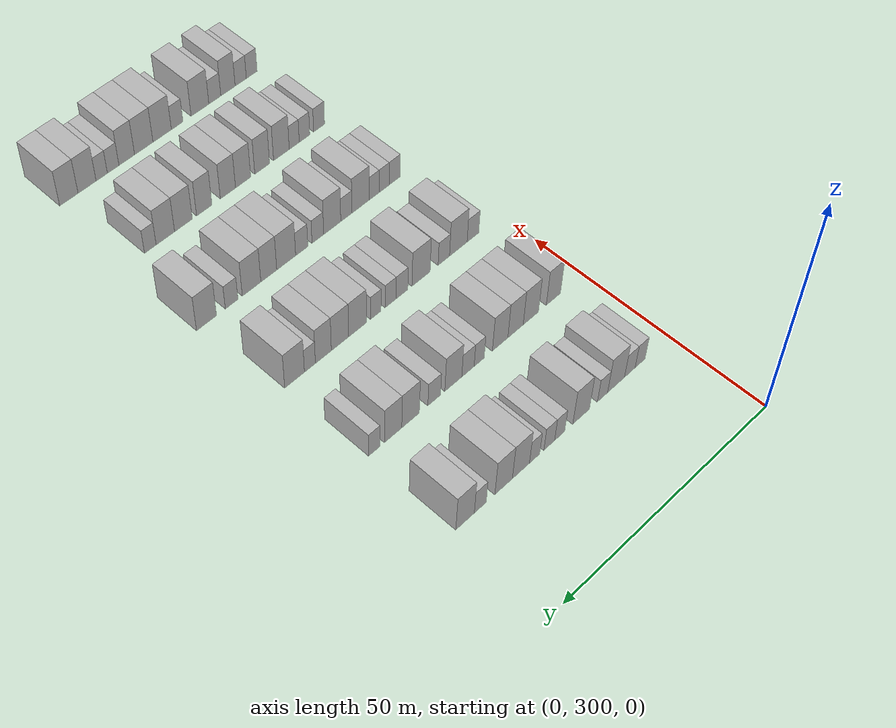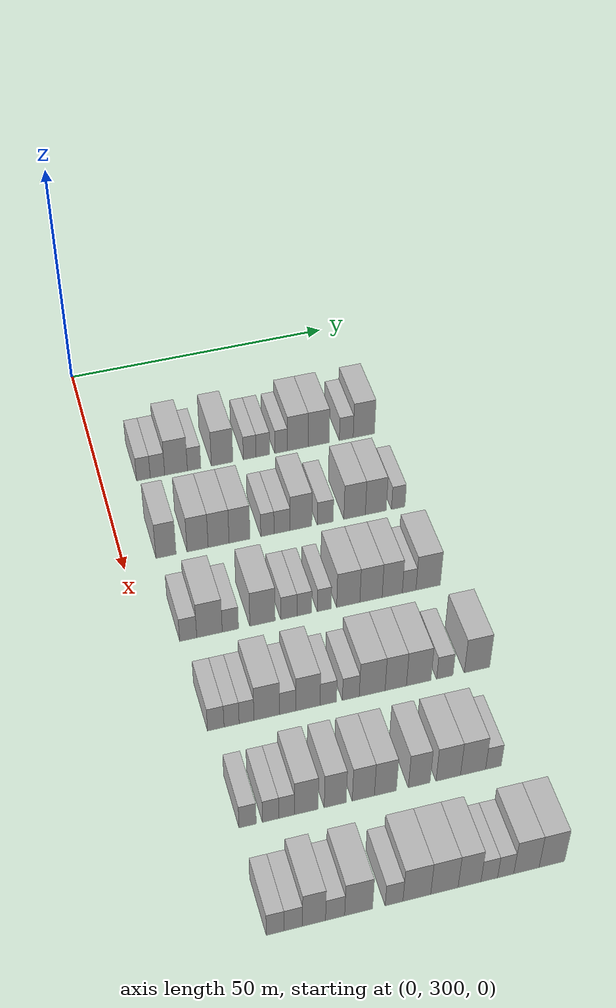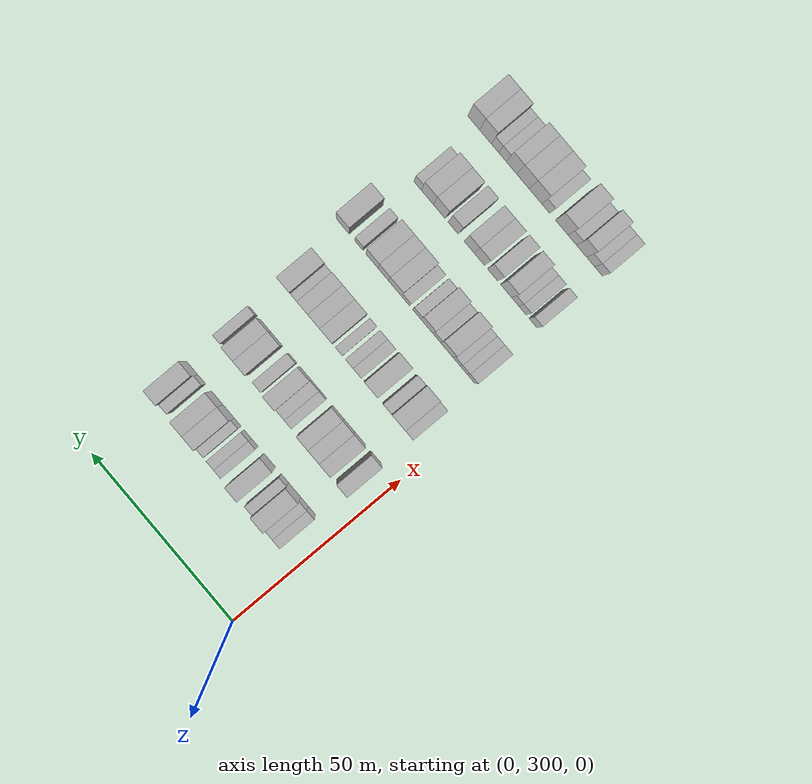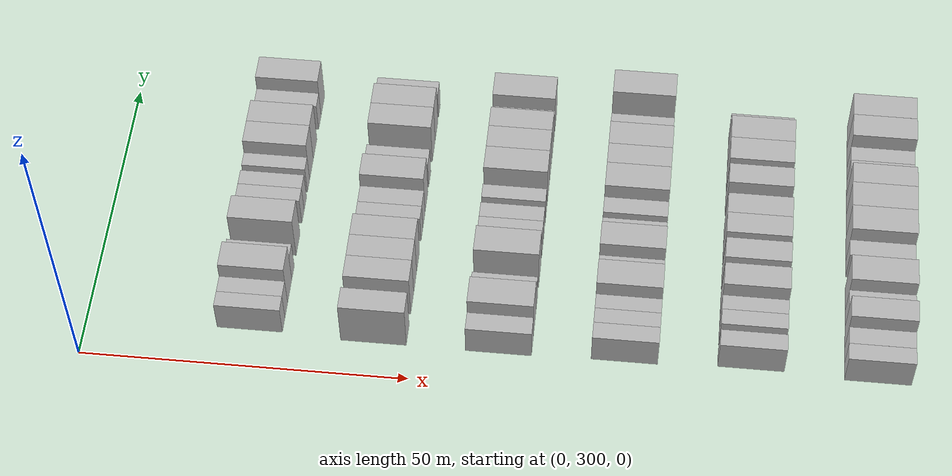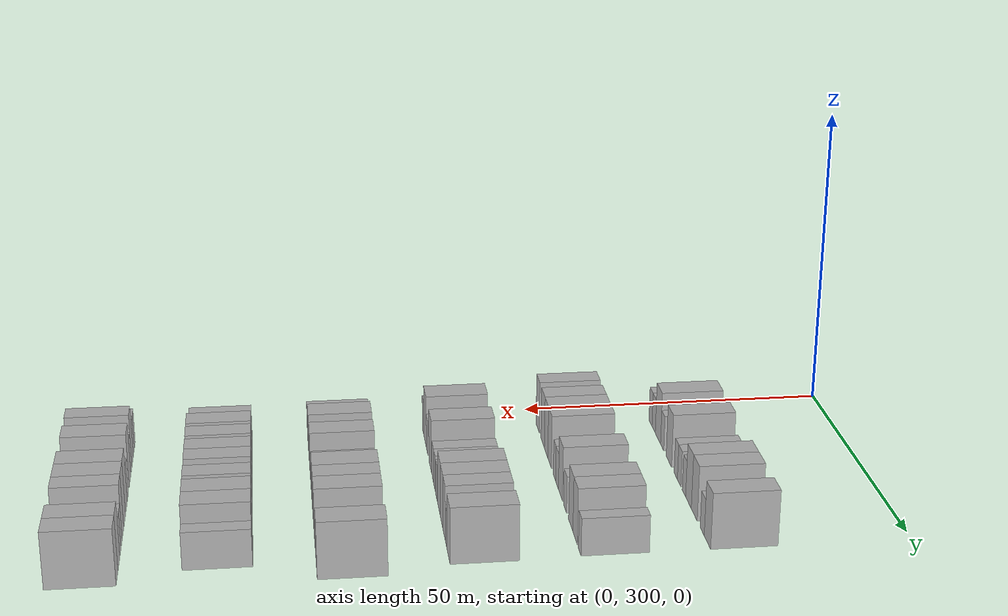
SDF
<sdf version="1.6">
 <world name="default">
  <model name="building_157">
   <static>1</static>
   <pose>25.0000 307.7152 0 0.000000 0.000000 0.000000</pose>
   <link name="link">
    <pose>0 0 3.00 0 0 0</pose>
    <collision name="collision"><geometry><box><size>10.0000 2.5644 6.0000</size></box></geometry></collision>
    <visual name="visual">
     <cast_shadows>0</cast_shadows>
     <geometry><box><size>10.0000 2.5644 6.0000</size></box></geometry>
     <material>
      <script>
       <uri>model://HANNAS_wall/materials/scripts</uri>
       <uri>model://HANNAS_wall/materials/textures</uri>
       <name>vrc/HANNAS_wall</name>
      </script>
     </material>
    </visual>
   </link>
  </model>
  <model name="building_158">
   <static>1</static>
   <pose>25.0000 310.3605 0 0.000000 0.000000 0.000000</pose>
   <link name="link">
    <pose>0 0 3.00 0 0 0</pose>
    <collision name="collision"><geometry><box><size>10.0000 2.7262 6.0000</size></box></geometry></collision>
    <visual name="visual">
     <cast_shadows>0</cast_shadows>
     <geometry><box><size>10.0000 2.7262 6.0000</size></box></geometry>
     <material>
      <script>
       <uri>model://HANNAS_wall/materials/scripts</uri>
       <uri>model://HANNAS_wall/materials/textures</uri>
       <name>vrc/HANNAS_wall</name>
      </script>
     </material>
    </visual>
   </link>
  </model>
  <model name="building_159">
   <static>1</static>
   <pose>25.0000 313.8693 0 0.000000 0.000000 0.000000</pose>
   <link name="link">
    <pose>0 0 4.50 0 0 0</pose>
    <collision name="collision"><geometry><box><size>10.0000 4.2914 9.0000</size></box></geometry></collision>
    <visual name="visual">
     <cast_shadows>0</cast_shadows>
     <geometry><box><size>10.0000 4.2914 9.0000</size></box></geometry>
     <material>
      <script>
       <uri>model://HANNAS_wall/materials/scripts</uri>
       <uri>model://HANNAS_wall/materials/textures</uri>
       <name>vrc/HANNAS_wall</name>
      </script>
     </material>
    </visual>
   </link>
  </model>
  <model name="building_160">
   <static>1</static>
   <pose>25.0000 317.2918 0 0.000000 0.000000 0.000000</pose>
   <link name="link">
    <pose>0 0 3.00 0 0 0</pose>
    <collision name="collision"><geometry><box><size>10.0000 2.5536 6.0000</size></box></geometry></collision>
    <visual name="visual">
     <cast_shadows>0</cast_shadows>
     <geometry><box><size>10.0000 2.5536 6.0000</size></box></geometry>
     <material>
      <script>
       <uri>model://HANNAS_wall/materials/scripts</uri>
       <uri>model://HANNAS_wall/materials/textures</uri>
       <name>vrc/HANNAS_wall</name>
      </script>
     </material>
    </visual>
   </link>
  </model>
  <model name="building_161">
   <static>1</static>
   <pose>25.0000 322.6213 0 0.000000 0.000000 0.000000</pose>
   <link name="link">
    <pose>0 0 4.50 0 0 0</pose>
    <collision name="collision"><geometry><box><size>10.0000 4.1053 9.0000</size></box></geometry></collision>
    <visual name="visual">
     <cast_shadows>0</cast_shadows>
     <geometry><box><size>10.0000 4.1053 9.0000</size></box></geometry>
     <material>
      <script>
       <uri>model://HANNAS_wall/materials/scripts</uri>
       <uri>model://HANNAS_wall/materials/textures</uri>
       <name>vrc/HANNAS_wall</name>
      </script>
     </material>
    </visual>
   </link>
  </model>
  <model name="building_162">
   <static>1</static>
   <pose>25.0000 327.8929 0 0.000000 0.000000 0.000000</pose>
   <link name="link">
    <pose>0 0 3.00 0 0 0</pose>
    <collision name="collision"><geometry><box><size>10.0000 2.4380 6.0000</size></box></geometry></collision>
    <visual name="visual">
     <cast_shadows>0</cast_shadows>
     <geometry><box><size>10.0000 2.4380 6.0000</size></box></geometry>
     <material>
      <script>
       <uri>model://HANNAS_wall/materials/scripts</uri>
       <uri>model://HANNAS_wall/materials/textures</uri>
       <name>vrc/HANNAS_wall</name>
      </script>
     </material>
    </visual>
   </link>
  </model>
  <model name="building_163">
   <static>1</static>
   <pose>25.0000 330.4082 0 0.000000 0.000000 0.000000</pose>
   <link name="link">
    <pose>0 0 3.00 0 0 0</pose>
    <collision name="collision"><geometry><box><size>10.0000 2.5927 6.0000</size></box></geometry></collision>
    <visual name="visual">
     <cast_shadows>0</cast_shadows>
     <geometry><box><size>10.0000 2.5927 6.0000</size></box></geometry>
     <material>
      <script>
       <uri>model://HANNAS_wall/materials/scripts</uri>
       <uri>model://HANNAS_wall/materials/textures</uri>
       <name>vrc/HANNAS_wall</name>
      </script>
     </material>
    </visual>
   </link>
  </model>
  <model name="building_164">
   <static>1</static>
   <pose>25.0000 333.9243 0 0.000000 0.000000 0.000000</pose>
   <link name="link">
    <pose>0 0 3.00 0 0 0</pose>
    <collision name="collision"><geometry><box><size>10.0000 2.4395 6.0000</size></box></geometry></collision>
    <visual name="visual">
     <cast_shadows>0</cast_shadows>
     <geometry><box><size>10.0000 2.4395 6.0000</size></box></geometry>
     <material>
      <script>
       <uri>model://HANNAS_wall/materials/scripts</uri>
       <uri>model://HANNAS_wall/materials/textures</uri>
       <name>vrc/HANNAS_wall</name>
      </script>
     </material>
    </visual>
   </link>
  </model>
  <model name="building_165">
   <static>1</static>
   <pose>25.0000 337.1526 0 0.000000 0.000000 0.000000</pose>
   <link name="link">
    <pose>0 0 4.50 0 0 0</pose>
    <collision name="collision"><geometry><box><size>10.0000 4.0172 9.0000</size></box></geometry></collision>
    <visual name="visual">
     <cast_shadows>0</cast_shadows>
     <geometry><box><size>10.0000 4.0172 9.0000</size></box></geometry>
     <material>
      <script>
       <uri>model://HANNAS_wall/materials/scripts</uri>
       <uri>model://HANNAS_wall/materials/textures</uri>
       <name>vrc/HANNAS_wall</name>
      </script>
     </material>
    </visual>
   </link>
  </model>
  <model name="building_166">
   <static>1</static>
   <pose>25.0000 341.2038 0 0.000000 0.000000 0.000000</pose>
   <link name="link">
    <pose>0 0 4.50 0 0 0</pose>
    <collision name="collision"><geometry><box><size>10.0000 4.0850 9.0000</size></box></geometry></collision>
    <visual name="visual">
     <cast_shadows>0</cast_shadows>
     <geometry><box><size>10.0000 4.0850 9.0000</size></box></geometry>
     <material>
      <script>
       <uri>model://HANNAS_wall/materials/scripts</uri>
       <uri>model://HANNAS_wall/materials/textures</uri>
       <name>vrc/HANNAS_wall</name>
      </script>
     </material>
    </visual>
   </link>
  </model>
  <model name="building_167">
   <static>1</static>
   <pose>25.0000 346.6024 0 0.000000 0.000000 0.000000</pose>
   <link name="link">
    <pose>0 0 3.00 0 0 0</pose>
    <collision name="collision"><geometry><box><size>10.0000 2.7123 6.0000</size></box></geometry></collision>
    <visual name="visual">
     <cast_shadows>0</cast_shadows>
     <geometry><box><size>10.0000 2.7123 6.0000</size></box></geometry>
     <material>
      <script>
       <uri>model://HANNAS_wall/materials/scripts</uri>
       <uri>model://HANNAS_wall/materials/textures</uri>
       <name>vrc/HANNAS_wall</name>
      </script>
     </material>
    </visual>
   </link>
  </model>
  <model name="building_168">
   <static>1</static>
   <pose>25.0000 350.0509 0 0.000000 0.000000 0.000000</pose>
   <link name="link">
    <pose>0 0 4.50 0 0 0</pose>
    <collision name="collision"><geometry><box><size>10.0000 4.1846 9.0000</size></box></geometry></collision>
    <visual name="visual">
     <cast_shadows>0</cast_shadows>
     <geometry><box><size>10.0000 4.1846 9.0000</size></box></geometry>
     <material>
      <script>
       <uri>model://HANNAS_wall/materials/scripts</uri>
       <uri>model://HANNAS_wall/materials/textures</uri>
       <name>vrc/HANNAS_wall</name>
      </script>
     </material>
    </visual>
   </link>
  </model>
  <model name="building_320">
   <static>1</static>
   <pose>44.0000 307.7018 0 0.000000 0.000000 0.000000</pose>
   <link name="link">
    <pose>0 0 4.50 0 0 0</pose>
    <collision name="collision"><geometry><box><size>10.0000 3.6535 9.0000</size></box></geometry></collision>
    <visual name="visual">
     <cast_shadows>0</cast_shadows>
     <geometry><box><size>10.0000 3.6535 9.0000</size></box></geometry>
     <material>
      <script>
       <uri>model://HANNAS_wall/materials/scripts</uri>
       <uri>model://HANNAS_wall/materials/textures</uri>
       <name>vrc/HANNAS_wall</name>
      </script>
     </material>
    </visual>
   </link>
  </model>
  <model name="building_321">
   <static>1</static>
   <pose>44.0000 313.4511 0 0.000000 0.000000 0.000000</pose>
   <link name="link">
    <pose>0 0 4.50 0 0 0</pose>
    <collision name="collision"><geometry><box><size>10.0000 3.8453 9.0000</size></box></geometry></collision>
    <visual name="visual">
     <cast_shadows>0</cast_shadows>
     <geometry><box><size>10.0000 3.8453 9.0000</size></box></geometry>
     <material>
      <script>
       <uri>model://HANNAS_wall/materials/scripts</uri>
       <uri>model://HANNAS_wall/materials/textures</uri>
       <name>vrc/HANNAS_wall</name>
      </script>
     </material>
    </visual>
   </link>
  </model>
  <model name="building_322">
   <static>1</static>
   <pose>44.0000 317.2919 0 0.000000 0.000000 0.000000</pose>
   <link name="link">
    <pose>0 0 4.50 0 0 0</pose>
    <collision name="collision"><geometry><box><size>10.0000 3.8361 9.0000</size></box></geometry></collision>
    <visual name="visual">
     <cast_shadows>0</cast_shadows>
     <geometry><box><size>10.0000 3.8361 9.0000</size></box></geometry>
     <material>
      <script>
       <uri>model://HANNAS_wall/materials/scripts</uri>
       <uri>model://HANNAS_wall/materials/textures</uri>
       <name>vrc/HANNAS_wall</name>
      </script>
     </material>
    </visual>
   </link>
  </model>
  <model name="building_323">
   <static>1</static>
   <pose>44.0000 321.1308 0 0.000000 0.000000 0.000000</pose>
   <link name="link">
    <pose>0 0 4.50 0 0 0</pose>
    <collision name="collision"><geometry><box><size>10.0000 3.8418 9.0000</size></box></geometry></collision>
    <visual name="visual">
     <cast_shadows>0</cast_shadows>
     <geometry><box><size>10.0000 3.8418 9.0000</size></box></geometry>
     <material>
      <script>
       <uri>model://HANNAS_wall/materials/scripts</uri>
       <uri>model://HANNAS_wall/materials/textures</uri>
       <name>vrc/HANNAS_wall</name>
      </script>
     </material>
    </visual>
   </link>
  </model>
  <model name="building_324">
   <static>1</static>
   <pose>44.0000 326.2718 0 0.000000 0.000000 0.000000</pose>
   <link name="link">
    <pose>0 0 3.00 0 0 0</pose>
    <collision name="collision"><geometry><box><size>10.0000 2.4402 6.0000</size></box></geometry></collision>
    <visual name="visual">
     <cast_shadows>0</cast_shadows>
     <geometry><box><size>10.0000 2.4402 6.0000</size></box></geometry>
     <material>
      <script>
       <uri>model://HANNAS_wall/materials/scripts</uri>
       <uri>model://HANNAS_wall/materials/textures</uri>
       <name>vrc/HANNAS_wall</name>
      </script>
     </material>
    </visual>
   </link>
  </model>
  <model name="building_325">
   <static>1</static>
   <pose>44.0000 328.9857 0 0.000000 0.000000 0.000000</pose>
   <link name="link">
    <pose>0 0 3.00 0 0 0</pose>
    <collision name="collision"><geometry><box><size>10.0000 2.9875 6.0000</size></box></geometry></collision>
    <visual name="visual">
     <cast_shadows>0</cast_shadows>
     <geometry><box><size>10.0000 2.9875 6.0000</size></box></geometry>
     <material>
      <script>
       <uri>model://HANNAS_wall/materials/scripts</uri>
       <uri>model://HANNAS_wall/materials/textures</uri>
       <name>vrc/HANNAS_wall</name>
      </script>
     </material>
    </visual>
   </link>
  </model>
  <model name="building_326">
   <static>1</static>
   <pose>44.0000 332.5061 0 0.000000 0.000000 0.000000</pose>
   <link name="link">
    <pose>0 0 4.50 0 0 0</pose>
    <collision name="collision"><geometry><box><size>10.0000 4.0532 9.0000</size></box></geometry></collision>
    <visual name="visual">
     <cast_shadows>0</cast_shadows>
     <geometry><box><size>10.0000 4.0532 9.0000</size></box></geometry>
     <material>
      <script>
       <uri>model://HANNAS_wall/materials/scripts</uri>
       <uri>model://HANNAS_wall/materials/textures</uri>
       <name>vrc/HANNAS_wall</name>
      </script>
     </material>
    </visual>
   </link>
  </model>
  <model name="building_327">
   <static>1</static>
   <pose>44.0000 337.0274 0 0.000000 0.000000 0.000000</pose>
   <link name="link">
    <pose>0 0 3.00 0 0 0</pose>
    <collision name="collision"><geometry><box><size>10.0000 2.9894 6.0000</size></box></geometry></collision>
    <visual name="visual">
     <cast_shadows>0</cast_shadows>
     <geometry><box><size>10.0000 2.9894 6.0000</size></box></geometry>
     <material>
      <script>
       <uri>model://HANNAS_wall/materials/scripts</uri>
       <uri>model://HANNAS_wall/materials/textures</uri>
       <name>vrc/HANNAS_wall</name>
      </script>
     </material>
    </visual>
   </link>
  </model>
  <model name="building_328">
   <static>1</static>
   <pose>44.0000 342.5498 0 0.000000 0.000000 0.000000</pose>
   <link name="link">
    <pose>0 0 4.50 0 0 0</pose>
    <collision name="collision"><geometry><box><size>10.0000 4.0553 9.0000</size></box></geometry></collision>
    <visual name="visual">
     <cast_shadows>0</cast_shadows>
     <geometry><box><size>10.0000 4.0553 9.0000</size></box></geometry>
     <material>
      <script>
       <uri>model://HANNAS_wall/materials/scripts</uri>
       <uri>model://HANNAS_wall/materials/textures</uri>
       <name>vrc/HANNAS_wall</name>
      </script>
     </material>
    </visual>
   </link>
  </model>
  <model name="building_329">
   <static>1</static>
   <pose>44.0000 346.5555 0 0.000000 0.000000 0.000000</pose>
   <link name="link">
    <pose>0 0 4.50 0 0 0</pose>
    <collision name="collision"><geometry><box><size>10.0000 3.9561 9.0000</size></box></geometry></collision>
    <visual name="visual">
     <cast_shadows>0</cast_shadows>
     <geometry><box><size>10.0000 3.9561 9.0000</size></box></geometry>
     <material>
      <script>
       <uri>model://HANNAS_wall/materials/scripts</uri>
       <uri>model://HANNAS_wall/materials/textures</uri>
       <name>vrc/HANNAS_wall</name>
      </script>
     </material>
    </visual>
   </link>
  </model>
  <model name="building_330">
   <static>1</static>
   <pose>44.0000 350.8119 0 0.000000 0.000000 0.000000</pose>
   <link name="link">
    <pose>0 0 3.00 0 0 0</pose>
    <collision name="collision"><geometry><box><size>10.0000 2.5568 6.0000</size></box></geometry></collision>
    <visual name="visual">
     <cast_shadows>0</cast_shadows>
     <geometry><box><size>10.0000 2.5568 6.0000</size></box></geometry>
     <material>
      <script>
       <uri>model://HANNAS_wall/materials/scripts</uri>
       <uri>model://HANNAS_wall/materials/textures</uri>
       <name>vrc/HANNAS_wall</name>
      </script>
     </material>
    </visual>
   </link>
  </model>
  <model name="building_492">
   <static>1</static>
   <pose>63.0000 307.3022 0 0.000000 0.000000 0.000000</pose>
   <link name="link">
    <pose>0 0 3.00 0 0 0</pose>
    <collision name="collision"><geometry><box><size>10.0000 2.9819 6.0000</size></box></geometry></collision>
    <visual name="visual">
     <cast_shadows>0</cast_shadows>
     <geometry><box><size>10.0000 2.9819 6.0000</size></box></geometry>
     <material>
      <script>
       <uri>model://HANNAS_wall/materials/scripts</uri>
       <uri>model://HANNAS_wall/materials/textures</uri>
       <name>vrc/HANNAS_wall</name>
      </script>
     </material>
    </visual>
   </link>
  </model>
  <model name="building_493">
   <static>1</static>
   <pose>63.0000 311.0277 0 0.000000 0.000000 0.000000</pose>
   <link name="link">
    <pose>0 0 4.50 0 0 0</pose>
    <collision name="collision"><geometry><box><size>10.0000 4.4692 9.0000</size></box></geometry></collision>
    <visual name="visual">
     <cast_shadows>0</cast_shadows>
     <geometry><box><size>10.0000 4.4692 9.0000</size></box></geometry>
     <material>
      <script>
       <uri>model://HANNAS_wall/materials/scripts</uri>
       <uri>model://HANNAS_wall/materials/textures</uri>
       <name>vrc/HANNAS_wall</name>
      </script>
     </material>
    </visual>
   </link>
  </model>
  <model name="building_494">
   <static>1</static>
   <pose>63.0000 314.6986 0 0.000000 0.000000 0.000000</pose>
   <link name="link">
    <pose>0 0 3.00 0 0 0</pose>
    <collision name="collision"><geometry><box><size>10.0000 2.8726 6.0000</size></box></geometry></collision>
    <visual name="visual">
     <cast_shadows>0</cast_shadows>
     <geometry><box><size>10.0000 2.8726 6.0000</size></box></geometry>
     <material>
      <script>
       <uri>model://HANNAS_wall/materials/scripts</uri>
       <uri>model://HANNAS_wall/materials/textures</uri>
       <name>vrc/HANNAS_wall</name>
      </script>
     </material>
    </visual>
   </link>
  </model>
  <model name="building_495">
   <static>1</static>
   <pose>63.0000 320.3788 0 0.000000 0.000000 0.000000</pose>
   <link name="link">
    <pose>0 0 4.50 0 0 0</pose>
    <collision name="collision"><geometry><box><size>10.0000 4.4878 9.0000</size></box></geometry></collision>
    <visual name="visual">
     <cast_shadows>0</cast_shadows>
     <geometry><box><size>10.0000 4.4878 9.0000</size></box></geometry>
     <material>
      <script>
       <uri>model://HANNAS_wall/materials/scripts</uri>
       <uri>model://HANNAS_wall/materials/textures</uri>
       <name>vrc/HANNAS_wall</name>
      </script>
     </material>
    </visual>
   </link>
  </model>
  <model name="building_496">
   <static>1</static>
   <pose>63.0000 325.0568 0 0.000000 0.000000 0.000000</pose>
   <link name="link">
    <pose>0 0 3.00 0 0 0</pose>
    <collision name="collision"><geometry><box><size>10.0000 2.8682 6.0000</size></box></geometry></collision>
    <visual name="visual">
     <cast_shadows>0</cast_shadows>
     <geometry><box><size>10.0000 2.8682 6.0000</size></box></geometry>
     <material>
      <script>
       <uri>model://HANNAS_wall/materials/scripts</uri>
       <uri>model://HANNAS_wall/materials/textures</uri>
       <name>vrc/HANNAS_wall</name>
      </script>
     </material>
    </visual>
   </link>
  </model>
  <model name="building_497">
   <static>1</static>
   <pose>63.0000 327.8164 0 0.000000 0.000000 0.000000</pose>
   <link name="link">
    <pose>0 0 3.00 0 0 0</pose>
    <collision name="collision"><geometry><box><size>10.0000 2.6510 6.0000</size></box></geometry></collision>
    <visual name="visual">
     <cast_shadows>0</cast_shadows>
     <geometry><box><size>10.0000 2.6510 6.0000</size></box></geometry>
     <material>
      <script>
       <uri>model://HANNAS_wall/materials/scripts</uri>
       <uri>model://HANNAS_wall/materials/textures</uri>
       <name>vrc/HANNAS_wall</name>
      </script>
     </material>
    </visual>
   </link>
  </model>
  <model name="building_498">
   <static>1</static>
   <pose>63.0000 331.3830 0 0.000000 0.000000 0.000000</pose>
   <link name="link">
    <pose>0 0 3.00 0 0 0</pose>
    <collision name="collision"><geometry><box><size>10.0000 2.4822 6.0000</size></box></geometry></collision>
    <visual name="visual">
     <cast_shadows>0</cast_shadows>
     <geometry><box><size>10.0000 2.4822 6.0000</size></box></geometry>
     <material>
      <script>
       <uri>model://HANNAS_wall/materials/scripts</uri>
       <uri>model://HANNAS_wall/materials/textures</uri>
       <name>vrc/HANNAS_wall</name>
      </script>
     </material>
    </visual>
   </link>
  </model>
  <model name="building_499">
   <static>1</static>
   <pose>63.0000 335.7173 0 0.000000 0.000000 0.000000</pose>
   <link name="link">
    <pose>0 0 4.50 0 0 0</pose>
    <collision name="collision"><geometry><box><size>10.0000 4.1864 9.0000</size></box></geometry></collision>
    <visual name="visual">
     <cast_shadows>0</cast_shadows>
     <geometry><box><size>10.0000 4.1864 9.0000</size></box></geometry>
     <material>
      <script>
       <uri>model://HANNAS_wall/materials/scripts</uri>
       <uri>model://HANNAS_wall/materials/textures</uri>
       <name>vrc/HANNAS_wall</name>
      </script>
     </material>
    </visual>
   </link>
  </model>
  <model name="building_500">
   <static>1</static>
   <pose>63.0000 339.8303 0 0.000000 0.000000 0.000000</pose>
   <link name="link">
    <pose>0 0 4.50 0 0 0</pose>
    <collision name="collision"><geometry><box><size>10.0000 4.0395 9.0000</size></box></geometry></collision>
    <visual name="visual">
     <cast_shadows>0</cast_shadows>
     <geometry><box><size>10.0000 4.0395 9.0000</size></box></geometry>
     <material>
      <script>
       <uri>model://HANNAS_wall/materials/scripts</uri>
       <uri>model://HANNAS_wall/materials/textures</uri>
       <name>vrc/HANNAS_wall</name>
      </script>
     </material>
    </visual>
   </link>
  </model>
  <model name="building_501">
   <static>1</static>
   <pose>63.0000 343.6864 0 0.000000 0.000000 0.000000</pose>
   <link name="link">
    <pose>0 0 4.50 0 0 0</pose>
    <collision name="collision"><geometry><box><size>10.0000 3.6728 9.0000</size></box></geometry></collision>
    <visual name="visual">
     <cast_shadows>0</cast_shadows>
     <geometry><box><size>10.0000 3.6728 9.0000</size></box></geometry>
     <material>
      <script>
       <uri>model://HANNAS_wall/materials/scripts</uri>
       <uri>model://HANNAS_wall/materials/textures</uri>
       <name>vrc/HANNAS_wall</name>
      </script>
     </material>
    </visual>
   </link>
  </model>
  <model name="building_502">
   <static>1</static>
   <pose>63.0000 346.7730 0 0.000000 0.000000 0.000000</pose>
   <link name="link">
    <pose>0 0 3.00 0 0 0</pose>
    <collision name="collision"><geometry><box><size>10.0000 2.5004 6.0000</size></box></geometry></collision>
    <visual name="visual">
     <cast_shadows>0</cast_shadows>
     <geometry><box><size>10.0000 2.5004 6.0000</size></box></geometry>
     <material>
      <script>
       <uri>model://HANNAS_wall/materials/scripts</uri>
       <uri>model://HANNAS_wall/materials/textures</uri>
       <name>vrc/HANNAS_wall</name>
      </script>
     </material>
    </visual>
   </link>
  </model>
  <model name="building_503">
   <static>1</static>
   <pose>63.0000 350.2565 0 0.000000 0.000000 0.000000</pose>
   <link name="link">
    <pose>0 0 4.50 0 0 0</pose>
    <collision name="collision"><geometry><box><size>10.0000 4.4666 9.0000</size></box></geometry></collision>
    <visual name="visual">
     <cast_shadows>0</cast_shadows>
     <geometry><box><size>10.0000 4.4666 9.0000</size></box></geometry>
     <material>
      <script>
       <uri>model://HANNAS_wall/materials/scripts</uri>
       <uri>model://HANNAS_wall/materials/textures</uri>
       <name>vrc/HANNAS_wall</name>
      </script>
     </material>
    </visual>
   </link>
  </model>
  <model name="building_664">
   <static>1</static>
   <pose>82.0000 307.4907 0 0.000000 0.000000 0.000000</pose>
   <link name="link">
    <pose>0 0 3.00 0 0 0</pose>
    <collision name="collision"><geometry><box><size>10.0000 2.7885 6.0000</size></box></geometry></collision>
    <visual name="visual">
     <cast_shadows>0</cast_shadows>
     <geometry><box><size>10.0000 2.7885 6.0000</size></box></geometry>
     <material>
      <script>
       <uri>model://HANNAS_wall/materials/scripts</uri>
       <uri>model://HANNAS_wall/materials/textures</uri>
       <name>vrc/HANNAS_wall</name>
      </script>
     </material>
    </visual>
   </link>
  </model>
  <model name="building_665">
   <static>1</static>
   <pose>82.0000 310.1558 0 0.000000 0.000000 0.000000</pose>
   <link name="link">
    <pose>0 0 3.00 0 0 0</pose>
    <collision name="collision"><geometry><box><size>10.0000 2.5419 6.0000</size></box></geometry></collision>
    <visual name="visual">
     <cast_shadows>0</cast_shadows>
     <geometry><box><size>10.0000 2.5419 6.0000</size></box></geometry>
     <material>
      <script>
       <uri>model://HANNAS_wall/materials/scripts</uri>
       <uri>model://HANNAS_wall/materials/textures</uri>
       <name>vrc/HANNAS_wall</name>
      </script>
     </material>
    </visual>
   </link>
  </model>
  <model name="building_666">
   <static>1</static>
   <pose>82.0000 312.6794 0 0.000000 0.000000 0.000000</pose>
   <link name="link">
    <pose>0 0 3.00 0 0 0</pose>
    <collision name="collision"><geometry><box><size>10.0000 2.5052 6.0000</size></box></geometry></collision>
    <visual name="visual">
     <cast_shadows>0</cast_shadows>
     <geometry><box><size>10.0000 2.5052 6.0000</size></box></geometry>
     <material>
      <script>
       <uri>model://HANNAS_wall/materials/scripts</uri>
       <uri>model://HANNAS_wall/materials/textures</uri>
       <name>vrc/HANNAS_wall</name>
      </script>
     </material>
    </visual>
   </link>
  </model>
  <model name="building_667">
   <static>1</static>
   <pose>82.0000 316.1036 0 0.000000 0.000000 0.000000</pose>
   <link name="link">
    <pose>0 0 4.50 0 0 0</pose>
    <collision name="collision"><geometry><box><size>10.0000 4.3431 9.0000</size></box></geometry></collision>
    <visual name="visual">
     <cast_shadows>0</cast_shadows>
     <geometry><box><size>10.0000 4.3431 9.0000</size></box></geometry>
     <material>
      <script>
       <uri>model://HANNAS_wall/materials/scripts</uri>
       <uri>model://HANNAS_wall/materials/textures</uri>
       <name>vrc/HANNAS_wall</name>
      </script>
     </material>
    </visual>
   </link>
  </model>
  <model name="building_668">
   <static>1</static>
   <pose>82.0000 319.6531 0 0.000000 0.000000 0.000000</pose>
   <link name="link">
    <pose>0 0 3.00 0 0 0</pose>
    <collision name="collision"><geometry><box><size>10.0000 2.7559 6.0000</size></box></geometry></collision>
    <visual name="visual">
     <cast_shadows>0</cast_shadows>
     <geometry><box><size>10.0000 2.7559 6.0000</size></box></geometry>
     <material>
      <script>
       <uri>model://HANNAS_wall/materials/scripts</uri>
       <uri>model://HANNAS_wall/materials/textures</uri>
       <name>vrc/HANNAS_wall</name>
      </script>
     </material>
    </visual>
   </link>
  </model>
  <model name="building_669">
   <static>1</static>
   <pose>82.0000 323.1223 0 0.000000 0.000000 0.000000</pose>
   <link name="link">
    <pose>0 0 4.50 0 0 0</pose>
    <collision name="collision"><geometry><box><size>10.0000 4.1824 9.0000</size></box></geometry></collision>
    <visual name="visual">
     <cast_shadows>0</cast_shadows>
     <geometry><box><size>10.0000 4.1824 9.0000</size></box></geometry>
     <material>
      <script>
       <uri>model://HANNAS_wall/materials/scripts</uri>
       <uri>model://HANNAS_wall/materials/textures</uri>
       <name>vrc/HANNAS_wall</name>
      </script>
     </material>
    </visual>
   </link>
  </model>
  <model name="building_670">
   <static>1</static>
   <pose>82.0000 326.6351 0 0.000000 0.000000 0.000000</pose>
   <link name="link">
    <pose>0 0 3.00 0 0 0</pose>
    <collision name="collision"><geometry><box><size>10.0000 2.8431 6.0000</size></box></geometry></collision>
    <visual name="visual">
     <cast_shadows>0</cast_shadows>
     <geometry><box><size>10.0000 2.8431 6.0000</size></box></geometry>
     <material>
      <script>
       <uri>model://HANNAS_wall/materials/scripts</uri>
       <uri>model://HANNAS_wall/materials/textures</uri>
       <name>vrc/HANNAS_wall</name>
      </script>
     </material>
    </visual>
   </link>
  </model>
  <model name="building_671">
   <static>1</static>
   <pose>82.0000 330.5174 0 0.000000 0.000000 0.000000</pose>
   <link name="link">
    <pose>0 0 3.00 0 0 0</pose>
    <collision name="collision"><geometry><box><size>10.0000 2.9216 6.0000</size></box></geometry></collision>
    <visual name="visual">
     <cast_shadows>0</cast_shadows>
     <geometry><box><size>10.0000 2.9216 6.0000</size></box></geometry>
     <material>
      <script>
       <uri>model://HANNAS_wall/materials/scripts</uri>
       <uri>model://HANNAS_wall/materials/textures</uri>
       <name>vrc/HANNAS_wall</name>
      </script>
     </material>
    </visual>
   </link>
  </model>
  <model name="building_672">
   <static>1</static>
   <pose>82.0000 334.2234 0 0.000000 0.000000 0.000000</pose>
   <link name="link">
    <pose>0 0 4.50 0 0 0</pose>
    <collision name="collision"><geometry><box><size>10.0000 4.4904 9.0000</size></box></geometry></collision>
    <visual name="visual">
     <cast_shadows>0</cast_shadows>
     <geometry><box><size>10.0000 4.4904 9.0000</size></box></geometry>
     <material>
      <script>
       <uri>model://HANNAS_wall/materials/scripts</uri>
       <uri>model://HANNAS_wall/materials/textures</uri>
       <name>vrc/HANNAS_wall</name>
      </script>
     </material>
    </visual>
   </link>
  </model>
  <model name="building_673">
   <static>1</static>
   <pose>82.0000 338.3321 0 0.000000 0.000000 0.000000</pose>
   <link name="link">
    <pose>0 0 4.50 0 0 0</pose>
    <collision name="collision"><geometry><box><size>10.0000 3.7271 9.0000</size></box></geometry></collision>
    <visual name="visual">
     <cast_shadows>0</cast_shadows>
     <geometry><box><size>10.0000 3.7271 9.0000</size></box></geometry>
     <material>
      <script>
       <uri>model://HANNAS_wall/materials/scripts</uri>
       <uri>model://HANNAS_wall/materials/textures</uri>
       <name>vrc/HANNAS_wall</name>
      </script>
     </material>
    </visual>
   </link>
  </model>
  <model name="building_674">
   <static>1</static>
   <pose>82.0000 342.3438 0 0.000000 0.000000 0.000000</pose>
   <link name="link">
    <pose>0 0 4.50 0 0 0</pose>
    <collision name="collision"><geometry><box><size>10.0000 4.2964 9.0000</size></box></geometry></collision>
    <visual name="visual">
     <cast_shadows>0</cast_shadows>
     <geometry><box><size>10.0000 4.2964 9.0000</size></box></geometry>
     <material>
      <script>
       <uri>model://HANNAS_wall/materials/scripts</uri>
       <uri>model://HANNAS_wall/materials/textures</uri>
       <name>vrc/HANNAS_wall</name>
      </script>
     </material>
    </visual>
   </link>
  </model>
  <model name="building_675">
   <static>1</static>
   <pose>82.0000 346.9386 0 0.000000 0.000000 0.000000</pose>
   <link name="link">
    <pose>0 0 3.00 0 0 0</pose>
    <collision name="collision"><geometry><box><size>10.0000 2.8932 6.0000</size></box></geometry></collision>
    <visual name="visual">
     <cast_shadows>0</cast_shadows>
     <geometry><box><size>10.0000 2.8932 6.0000</size></box></geometry>
     <material>
      <script>
       <uri>model://HANNAS_wall/materials/scripts</uri>
       <uri>model://HANNAS_wall/materials/textures</uri>
       <name>vrc/HANNAS_wall</name>
      </script>
     </material>
    </visual>
   </link>
  </model>
  <model name="building_676">
   <static>1</static>
   <pose>82.0000 352.6329 0 0.000000 0.000000 0.000000</pose>
   <link name="link">
    <pose>0 0 4.50 0 0 0</pose>
    <collision name="collision"><geometry><box><size>10.0000 4.4954 9.0000</size></box></geometry></collision>
    <visual name="visual">
     <cast_shadows>0</cast_shadows>
     <geometry><box><size>10.0000 4.4954 9.0000</size></box></geometry>
     <material>
      <script>
       <uri>model://HANNAS_wall/materials/scripts</uri>
       <uri>model://HANNAS_wall/materials/textures</uri>
       <name>vrc/HANNAS_wall</name>
      </script>
     </material>
    </visual>
   </link>
  </model>
  <model name="building_837">
   <static>1</static>
   <pose>101.0000 307.9916 0 0.000000 0.000000 0.000000</pose>
   <link name="link">
    <pose>0 0 3.00 0 0 0</pose>
    <collision name="collision"><geometry><box><size>10.0000 2.7918 6.0000</size></box></geometry></collision>
    <visual name="visual">
     <cast_shadows>0</cast_shadows>
     <geometry><box><size>10.0000 2.7918 6.0000</size></box></geometry>
     <material>
      <script>
       <uri>model://HANNAS_wall/materials/scripts</uri>
       <uri>model://HANNAS_wall/materials/textures</uri>
       <name>vrc/HANNAS_wall</name>
      </script>
     </material>
    </visual>
   </link>
  </model>
  <model name="building_838">
   <static>1</static>
   <pose>101.0000 311.7159 0 0.000000 0.000000 0.000000</pose>
   <link name="link">
    <pose>0 0 3.00 0 0 0</pose>
    <collision name="collision"><geometry><box><size>10.0000 2.6567 6.0000</size></box></geometry></collision>
    <visual name="visual">
     <cast_shadows>0</cast_shadows>
     <geometry><box><size>10.0000 2.6567 6.0000</size></box></geometry>
     <material>
      <script>
       <uri>model://HANNAS_wall/materials/scripts</uri>
       <uri>model://HANNAS_wall/materials/textures</uri>
       <name>vrc/HANNAS_wall</name>
      </script>
     </material>
    </visual>
   </link>
  </model>
  <model name="building_839">
   <static>1</static>
   <pose>101.0000 314.3021 0 0.000000 0.000000 0.000000</pose>
   <link name="link">
    <pose>0 0 3.00 0 0 0</pose>
    <collision name="collision"><geometry><box><size>10.0000 2.5157 6.0000</size></box></geometry></collision>
    <visual name="visual">
     <cast_shadows>0</cast_shadows>
     <geometry><box><size>10.0000 2.5157 6.0000</size></box></geometry>
     <material>
      <script>
       <uri>model://HANNAS_wall/materials/scripts</uri>
       <uri>model://HANNAS_wall/materials/textures</uri>
       <name>vrc/HANNAS_wall</name>
      </script>
     </material>
    </visual>
   </link>
  </model>
  <model name="building_840">
   <static>1</static>
   <pose>101.0000 317.5152 0 0.000000 0.000000 0.000000</pose>
   <link name="link">
    <pose>0 0 4.50 0 0 0</pose>
    <collision name="collision"><geometry><box><size>10.0000 3.9105 9.0000</size></box></geometry></collision>
    <visual name="visual">
     <cast_shadows>0</cast_shadows>
     <geometry><box><size>10.0000 3.9105 9.0000</size></box></geometry>
     <material>
      <script>
       <uri>model://HANNAS_wall/materials/scripts</uri>
       <uri>model://HANNAS_wall/materials/textures</uri>
       <name>vrc/HANNAS_wall</name>
      </script>
     </material>
    </visual>
   </link>
  </model>
  <model name="building_841">
   <static>1</static>
   <pose>101.0000 322.2824 0 0.000000 0.000000 0.000000</pose>
   <link name="link">
    <pose>0 0 4.50 0 0 0</pose>
    <collision name="collision"><geometry><box><size>10.0000 3.6239 9.0000</size></box></geometry></collision>
    <visual name="visual">
     <cast_shadows>0</cast_shadows>
     <geometry><box><size>10.0000 3.6239 9.0000</size></box></geometry>
     <material>
      <script>
       <uri>model://HANNAS_wall/materials/scripts</uri>
       <uri>model://HANNAS_wall/materials/textures</uri>
       <name>vrc/HANNAS_wall</name>
      </script>
     </material>
    </visual>
   </link>
  </model>
  <model name="building_842">
   <static>1</static>
   <pose>101.0000 326.9341 0 0.000000 0.000000 0.000000</pose>
   <link name="link">
    <pose>0 0 4.50 0 0 0</pose>
    <collision name="collision"><geometry><box><size>10.0000 3.6793 9.0000</size></box></geometry></collision>
    <visual name="visual">
     <cast_shadows>0</cast_shadows>
     <geometry><box><size>10.0000 3.6793 9.0000</size></box></geometry>
     <material>
      <script>
       <uri>model://HANNAS_wall/materials/scripts</uri>
       <uri>model://HANNAS_wall/materials/textures</uri>
       <name>vrc/HANNAS_wall</name>
      </script>
     </material>
    </visual>
   </link>
  </model>
  <model name="building_843">
   <static>1</static>
   <pose>101.0000 330.5996 0 0.000000 0.000000 0.000000</pose>
   <link name="link">
    <pose>0 0 4.50 0 0 0</pose>
    <collision name="collision"><geometry><box><size>10.0000 3.6519 9.0000</size></box></geometry></collision>
    <visual name="visual">
     <cast_shadows>0</cast_shadows>
     <geometry><box><size>10.0000 3.6519 9.0000</size></box></geometry>
     <material>
      <script>
       <uri>model://HANNAS_wall/materials/scripts</uri>
       <uri>model://HANNAS_wall/materials/textures</uri>
       <name>vrc/HANNAS_wall</name>
      </script>
     </material>
    </visual>
   </link>
  </model>
  <model name="building_844">
   <static>1</static>
   <pose>101.0000 336.2427 0 0.000000 0.000000 0.000000</pose>
   <link name="link">
    <pose>0 0 4.50 0 0 0</pose>
    <collision name="collision"><geometry><box><size>10.0000 3.6342 9.0000</size></box></geometry></collision>
    <visual name="visual">
     <cast_shadows>0</cast_shadows>
     <geometry><box><size>10.0000 3.6342 9.0000</size></box></geometry>
     <material>
      <script>
       <uri>model://HANNAS_wall/materials/scripts</uri>
       <uri>model://HANNAS_wall/materials/textures</uri>
       <name>vrc/HANNAS_wall</name>
      </script>
     </material>
    </visual>
   </link>
  </model>
  <model name="building_845">
   <static>1</static>
   <pose>101.0000 341.1280 0 0.000000 0.000000 0.000000</pose>
   <link name="link">
    <pose>0 0 4.50 0 0 0</pose>
    <collision name="collision"><geometry><box><size>10.0000 4.1365 9.0000</size></box></geometry></collision>
    <visual name="visual">
     <cast_shadows>0</cast_shadows>
     <geometry><box><size>10.0000 4.1365 9.0000</size></box></geometry>
     <material>
      <script>
       <uri>model://HANNAS_wall/materials/scripts</uri>
       <uri>model://HANNAS_wall/materials/textures</uri>
       <name>vrc/HANNAS_wall</name>
      </script>
     </material>
    </visual>
   </link>
  </model>
  <model name="building_846">
   <static>1</static>
   <pose>101.0000 345.3192 0 0.000000 0.000000 0.000000</pose>
   <link name="link">
    <pose>0 0 4.50 0 0 0</pose>
    <collision name="collision"><geometry><box><size>10.0000 4.2460 9.0000</size></box></geometry></collision>
    <visual name="visual">
     <cast_shadows>0</cast_shadows>
     <geometry><box><size>10.0000 4.2460 9.0000</size></box></geometry>
     <material>
      <script>
       <uri>model://HANNAS_wall/materials/scripts</uri>
       <uri>model://HANNAS_wall/materials/textures</uri>
       <name>vrc/HANNAS_wall</name>
      </script>
     </material>
    </visual>
   </link>
  </model>
  <model name="building_847">
   <static>1</static>
   <pose>101.0000 348.7750 0 0.000000 0.000000 0.000000</pose>
   <link name="link">
    <pose>0 0 3.00 0 0 0</pose>
    <collision name="collision"><geometry><box><size>10.0000 2.6656 6.0000</size></box></geometry></collision>
    <visual name="visual">
     <cast_shadows>0</cast_shadows>
     <geometry><box><size>10.0000 2.6656 6.0000</size></box></geometry>
     <material>
      <script>
       <uri>model://HANNAS_wall/materials/scripts</uri>
       <uri>model://HANNAS_wall/materials/textures</uri>
       <name>vrc/HANNAS_wall</name>
      </script>
     </material>
    </visual>
   </link>
  </model>
  <model name="building_1007">
   <static>1</static>
   <pose>120.0000 307.3799 0 0.000000 0.000000 0.000000</pose>
   <link name="link">
    <pose>0 0 3.00 0 0 0</pose>
    <collision name="collision"><geometry><box><size>10.0000 2.7677 6.0000</size></box></geometry></collision>
    <visual name="visual">
     <cast_shadows>0</cast_shadows>
     <geometry><box><size>10.0000 2.7677 6.0000</size></box></geometry>
     <material>
      <script>
       <uri>model://HANNAS_wall/materials/scripts</uri>
       <uri>model://HANNAS_wall/materials/textures</uri>
       <name>vrc/HANNAS_wall</name>
      </script>
     </material>
    </visual>
   </link>
  </model>
  <model name="building_1008">
   <static>1</static>
   <pose>120.0000 310.1913 0 0.000000 0.000000 0.000000</pose>
   <link name="link">
    <pose>0 0 3.00 0 0 0</pose>
    <collision name="collision"><geometry><box><size>10.0000 2.8550 6.0000</size></box></geometry></collision>
    <visual name="visual">
     <cast_shadows>0</cast_shadows>
     <geometry><box><size>10.0000 2.8550 6.0000</size></box></geometry>
     <material>
      <script>
       <uri>model://HANNAS_wall/materials/scripts</uri>
       <uri>model://HANNAS_wall/materials/textures</uri>
       <name>vrc/HANNAS_wall</name>
      </script>
     </material>
    </visual>
   </link>
  </model>
  <model name="building_1009">
   <static>1</static>
   <pose>120.0000 313.4233 0 0.000000 0.000000 0.000000</pose>
   <link name="link">
    <pose>0 0 4.50 0 0 0</pose>
    <collision name="collision"><geometry><box><size>10.0000 3.6090 9.0000</size></box></geometry></collision>
    <visual name="visual">
     <cast_shadows>0</cast_shadows>
     <geometry><box><size>10.0000 3.6090 9.0000</size></box></geometry>
     <material>
      <script>
       <uri>model://HANNAS_wall/materials/scripts</uri>
       <uri>model://HANNAS_wall/materials/textures</uri>
       <name>vrc/HANNAS_wall</name>
      </script>
     </material>
    </visual>
   </link>
  </model>
  <model name="building_1010">
   <static>1</static>
   <pose>120.0000 316.7264 0 0.000000 0.000000 0.000000</pose>
   <link name="link">
    <pose>0 0 3.00 0 0 0</pose>
    <collision name="collision"><geometry><box><size>10.0000 2.9971 6.0000</size></box></geometry></collision>
    <visual name="visual">
     <cast_shadows>0</cast_shadows>
     <geometry><box><size>10.0000 2.9971 6.0000</size></box></geometry>
     <material>
      <script>
       <uri>model://HANNAS_wall/materials/scripts</uri>
       <uri>model://HANNAS_wall/materials/textures</uri>
       <name>vrc/HANNAS_wall</name>
      </script>
     </material>
    </visual>
   </link>
  </model>
  <model name="building_1011">
   <static>1</static>
   <pose>120.0000 320.4267 0 0.000000 0.000000 0.000000</pose>
   <link name="link">
    <pose>0 0 4.50 0 0 0</pose>
    <collision name="collision"><geometry><box><size>10.0000 4.4035 9.0000</size></box></geometry></collision>
    <visual name="visual">
     <cast_shadows>0</cast_shadows>
     <geometry><box><size>10.0000 4.4035 9.0000</size></box></geometry>
     <material>
      <script>
       <uri>model://HANNAS_wall/materials/scripts</uri>
       <uri>model://HANNAS_wall/materials/textures</uri>
       <name>vrc/HANNAS_wall</name>
      </script>
     </material>
    </visual>
   </link>
  </model>
  <model name="building_1012">
   <static>1</static>
   <pose>120.0000 326.0419 0 0.000000 0.000000 0.000000</pose>
   <link name="link">
    <pose>0 0 3.00 0 0 0</pose>
    <collision name="collision"><geometry><box><size>10.0000 2.8270 6.0000</size></box></geometry></collision>
    <visual name="visual">
     <cast_shadows>0</cast_shadows>
     <geometry><box><size>10.0000 2.8270 6.0000</size></box></geometry>
     <material>
      <script>
       <uri>model://HANNAS_wall/materials/scripts</uri>
       <uri>model://HANNAS_wall/materials/textures</uri>
       <name>vrc/HANNAS_wall</name>
      </script>
     </material>
    </visual>
   </link>
  </model>
  <model name="building_1013">
   <static>1</static>
   <pose>120.0000 329.6765 0 0.000000 0.000000 0.000000</pose>
   <link name="link">
    <pose>0 0 4.50 0 0 0</pose>
    <collision name="collision"><geometry><box><size>10.0000 4.4421 9.0000</size></box></geometry></collision>
    <visual name="visual">
     <cast_shadows>0</cast_shadows>
     <geometry><box><size>10.0000 4.4421 9.0000</size></box></geometry>
     <material>
      <script>
       <uri>model://HANNAS_wall/materials/scripts</uri>
       <uri>model://HANNAS_wall/materials/textures</uri>
       <name>vrc/HANNAS_wall</name>
      </script>
     </material>
    </visual>
   </link>
  </model>
  <model name="building_1014">
   <static>1</static>
   <pose>120.0000 334.0952 0 0.000000 0.000000 0.000000</pose>
   <link name="link">
    <pose>0 0 4.50 0 0 0</pose>
    <collision name="collision"><geometry><box><size>10.0000 4.3953 9.0000</size></box></geometry></collision>
    <visual name="visual">
     <cast_shadows>0</cast_shadows>
     <geometry><box><size>10.0000 4.3953 9.0000</size></box></geometry>
     <material>
      <script>
       <uri>model://HANNAS_wall/materials/scripts</uri>
       <uri>model://HANNAS_wall/materials/textures</uri>
       <name>vrc/HANNAS_wall</name>
      </script>
     </material>
    </visual>
   </link>
  </model>
  <model name="building_1015">
   <static>1</static>
   <pose>120.0000 338.1392 0 0.000000 0.000000 0.000000</pose>
   <link name="link">
    <pose>0 0 4.50 0 0 0</pose>
    <collision name="collision"><geometry><box><size>10.0000 3.6929 9.0000</size></box></geometry></collision>
    <visual name="visual">
     <cast_shadows>0</cast_shadows>
     <geometry><box><size>10.0000 3.6929 9.0000</size></box></geometry>
     <material>
      <script>
       <uri>model://HANNAS_wall/materials/scripts</uri>
       <uri>model://HANNAS_wall/materials/textures</uri>
       <name>vrc/HANNAS_wall</name>
      </script>
     </material>
    </visual>
   </link>
  </model>
  <model name="building_1016">
   <static>1</static>
   <pose>120.0000 341.3386 0 0.000000 0.000000 0.000000</pose>
   <link name="link">
    <pose>0 0 3.00 0 0 0</pose>
    <collision name="collision"><geometry><box><size>10.0000 2.7058 6.0000</size></box></geometry></collision>
    <visual name="visual">
     <cast_shadows>0</cast_shadows>
     <geometry><box><size>10.0000 2.7058 6.0000</size></box></geometry>
     <material>
      <script>
       <uri>model://HANNAS_wall/materials/scripts</uri>
       <uri>model://HANNAS_wall/materials/textures</uri>
       <name>vrc/HANNAS_wall</name>
      </script>
     </material>
    </visual>
   </link>
  </model>
  <model name="building_1017">
   <static>1</static>
   <pose>120.0000 344.0030 0 0.000000 0.000000 0.000000</pose>
   <link name="link">
    <pose>0 0 3.00 0 0 0</pose>
    <collision name="collision"><geometry><box><size>10.0000 2.6231 6.0000</size></box></geometry></collision>
    <visual name="visual">
     <cast_shadows>0</cast_shadows>
     <geometry><box><size>10.0000 2.6231 6.0000</size></box></geometry>
     <material>
      <script>
       <uri>model://HANNAS_wall/materials/scripts</uri>
       <uri>model://HANNAS_wall/materials/textures</uri>
       <name>vrc/HANNAS_wall</name>
      </script>
     </material>
    </visual>
   </link>
  </model>
  <model name="building_1018">
   <static>1</static>
   <pose>120.0000 347.3902 0 0.000000 0.000000 0.000000</pose>
   <link name="link">
    <pose>0 0 4.50 0 0 0</pose>
    <collision name="collision"><geometry><box><size>10.0000 4.1513 9.0000</size></box></geometry></collision>
    <visual name="visual">
     <cast_shadows>0</cast_shadows>
     <geometry><box><size>10.0000 4.1513 9.0000</size></box></geometry>
     <material>
      <script>
       <uri>model://HANNAS_wall/materials/scripts</uri>
       <uri>model://HANNAS_wall/materials/textures</uri>
       <name>vrc/HANNAS_wall</name>
      </script>
     </material>
    </visual>
   </link>
  </model>
  <model name="building_1019">
   <static>1</static>
   <pose>120.0000 351.5560 0 0.000000 0.000000 0.000000</pose>
   <link name="link">
    <pose>0 0 4.50 0 0 0</pose>
    <collision name="collision"><geometry><box><size>10.0000 4.1804 9.0000</size></box></geometry></collision>
    <visual name="visual">
     <cast_shadows>0</cast_shadows>
     <geometry><box><size>10.0000 4.1804 9.0000</size></box></geometry>
     <material>
      <script>
       <uri>model://HANNAS_wall/materials/scripts</uri>
       <uri>model://HANNAS_wall/materials/textures</uri>
       <name>vrc/HANNAS_wall</name>
      </script>
     </material>
    </visual>
   </link>
  </model>
 </world>
</sdf>
